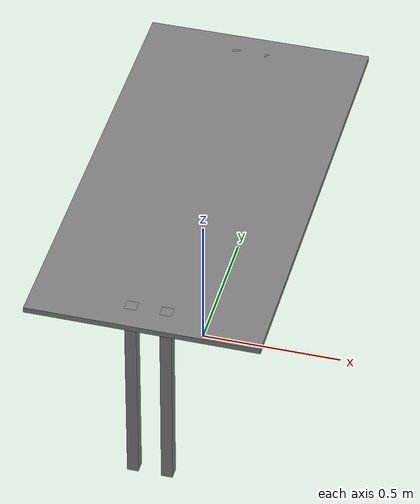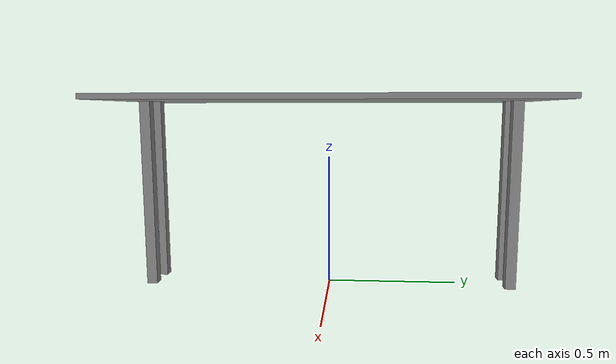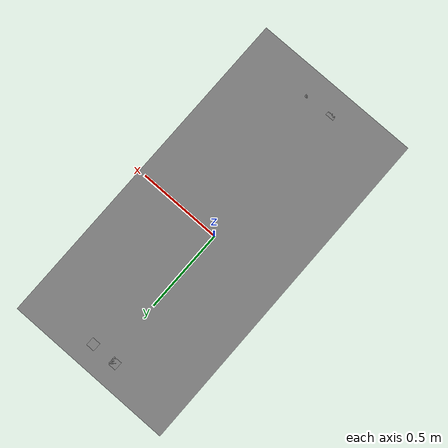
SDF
<?xml version="1.0"?>
<sdf version="1.6">
  <model name="rgo2015/table">
    <link name="1_link">
      <collision name="1_col">
        <geometry>
          <box>
            <size>0.8 1.6 0.02</size>
          </box>
        </geometry>
      </collision>
      <visual name="1_vis">
        <geometry>
          <box>
            <size>0.8 1.6 0.02</size>
          </box>
        </geometry>
        <material>
          <ambient>0.5 0.5 0.5 1</ambient>
        </material>
      </visual>
      <pose>0.0 0.0 0.725 0 0 0</pose>
    </link>
    <link name="2_link">
      <collision name="2_col">
        <geometry>
          <box>
            <size>0.04 0.04 0.735</size>
          </box>
        </geometry>
      </collision>
      <visual name="2_vis">
        <geometry>
          <box>
            <size>0.04 0.04 0.735</size>
          </box>
        </geometry>
        <material>
          <ambient>0.5 0.5 0.5 1</ambient>
        </material>
      </visual>
      <pose>-0.06 -0.7 0.3675 0 0 0</pose>
    </link>
    <link name="3_link">
      <collision name="3_col">
        <geometry>
          <box>
            <size>0.04 0.04 0.735</size>
          </box>
        </geometry>
      </collision>
      <visual name="3_vis">
        <geometry>
          <box>
            <size>0.04 0.04 0.735</size>
          </box>
        </geometry>
        <material>
          <ambient>0.5 0.5 0.5 1</ambient>
        </material>
      </visual>
      <pose>-0.06 0.7 0.3675 0 0 0</pose>
    </link>
    <link name="4_link">
      <collision name="4_col">
        <geometry>
          <box>
            <size>0.04 0.04 0.735</size>
          </box>
        </geometry>
      </collision>
      <visual name="4_vis">
        <geometry>
          <box>
            <size>0.04 0.04 0.735</size>
          </box>
        </geometry>
        <material>
          <ambient>0.5 0.5 0.5 1</ambient>
        </material>
      </visual>
      <pose>0.06 -0.7 0.3675 0 0 0</pose>
    </link>
    <link name="5_link">
      <collision name="5_col">
        <geometry>
          <box>
            <size>0.04 0.04 0.735</size>
          </box>
        </geometry>
      </collision>
      <visual name="5_vis">
        <geometry>
          <box>
            <size>0.04 0.04 0.735</size>
          </box>
        </geometry>
        <material>
          <ambient>0.5 0.5 0.5 1</ambient>
        </material>
      </visual>
      <pose>0.06 0.7 0.3675 0 0 0</pose>
    </link>
    <link name="in_front_of">
      <virtual_volume name="in_front_of_vv">
        <geometry>
          <box>
            <size>0.15 0.8 1</size>
          </box>
        </geometry>
        <pose>1.175 0.0 0.5 0 0 0</pose>
      </virtual_volume>
    </link>
    <static>true</static>
  </model>
</sdf>
